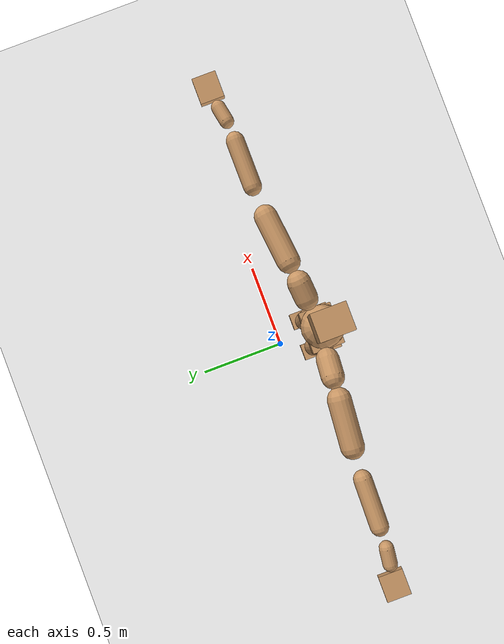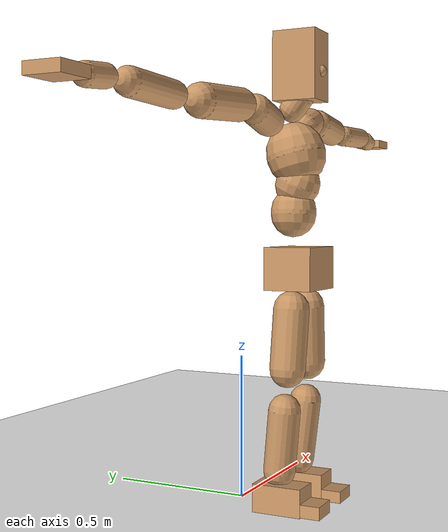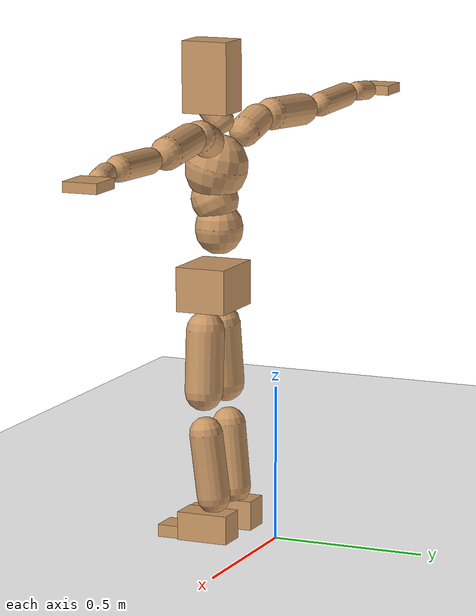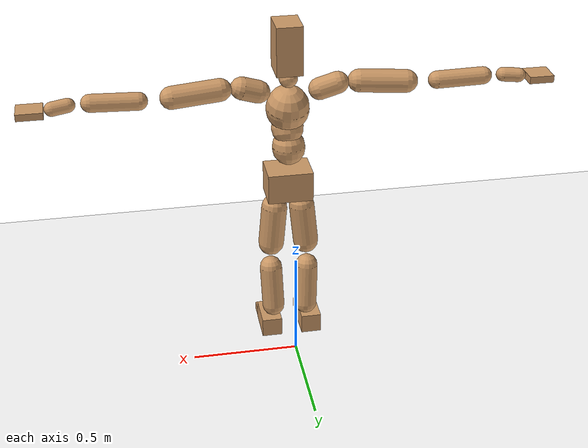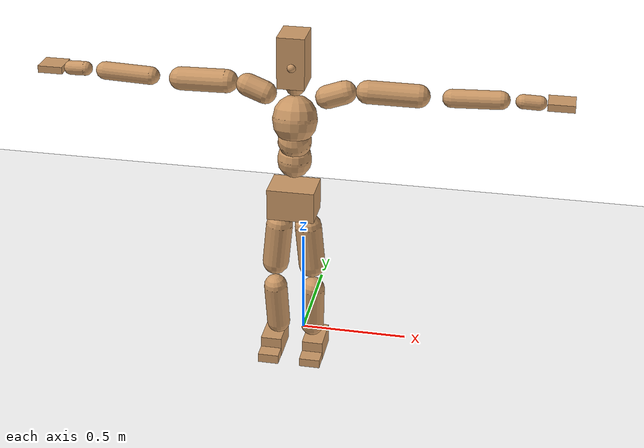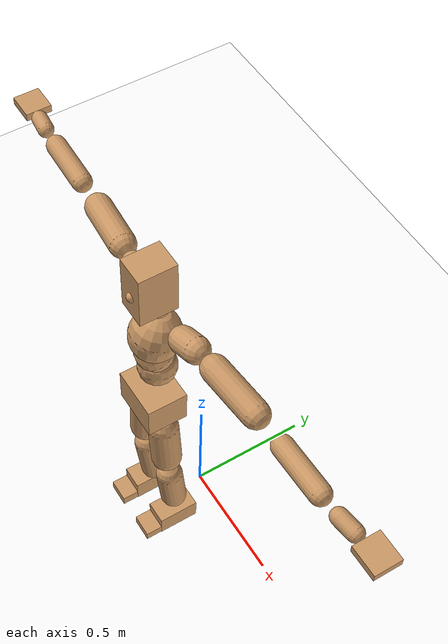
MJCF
<mujoco model="humanoid">
  <option integrator="implicitfast" />

  <visual>
    <global offwidth="1280" offheight="960" />
    <headlight active="1" ambient="0.34 0.34 0.34" diffuse="0.5 0.5 0.5" />
  </visual>

  <default>
    <joint damping="2" stiffness="2" armature="0.01" limited="true" solimplimit="0 .99 .01" />
    <geom condim="1" friction="0.7 0.005 0.0001" solimp=".99 .99 .003" solref="0.015 1" margin="0.001" rgba="0.8 0.6 .4 1" />
    <default class="smplcontact">
      <geom condim="3" friction="1. 0.005 0.0001" solref="0.015 1" solimp="0.98 0.98 0.001" priority="1" />
    </default>
    <default class="stiff_medium">
      <joint stiffness="10" />
    </default>
    <default class="stiff_medium_higher">
      <joint stiffness="50" />
    </default>
    <default class="stiff_high">
      <joint stiffness="100" />
    </default>
  </default>

  <asset>
    <texture type="skybox" builtin="gradient" rgb1="0.99 0.99 0.99" rgb2="0.608 0.828 0.892" width="100" />
    <texture builtin="flat" height="1278" mark="cross" markrgb="1 1 1" name="texgeom" random="0.01" rgb1="0.8 0.6 0.4" rgb2="0.8 0.6 0.4" type="cube" width="127" />
    <texture name="texplane" type="2d" builtin="checker" markrgb="1 1 1" rgb1="0.756 0.772 0.76" rgb2="0.6 0.6 0.6" width="100" height="100" />
    <material name="MatPlane" reflectance="0.5" texture="texplane" texrepeat="1 1" texuniform="true" />
    <material name="geom" texture="texgeom" texuniform="true" />
  </asset>

  <worldbody>
    <light name="tracking_light" pos="0 0 7" dir="0 0 -1" directional="true" cutoff="100" exponent="1" diffuse="1 1 1" specular="0.1 0.1 0.1" mode="trackcom" />
    <camera name="back" pos="0 3 2.4" xyaxes="-1 0 0 0 -1 2" mode="trackcom" />
    <camera name="side" pos="-3 0 2.4" xyaxes="0 -1 0 1 0 2" mode="trackcom" />
    <camera name="front_side" pos="-2.8 -2.8 0.8" xyaxes="0.5 -0.5 0 0.1 0.1 1" mode="trackcom" />
    <geom condim="3" name="floor" pos="0 0 0" rgba="1 1 1 1" size="100 100 .2" type="plane" material="MatPlane" />
    <body name="Pelvis" pos="-0.0018 -0.2233 0.825587" euler="90 0 0">
      <site name="Pelvis" size="0.01" />
      <freejoint name="Pelvis" />
      <geom type="box" pos="-0.0000 -0.0121 -0.0055" size="0.1069 0.0722 0.083" quat="1.0000 0.0000 0.0000 0.0000" density="3165.830099" name="Pelvis" />
      <body name="L_Hip" pos="0.0608125 -0.079975 -0.00595">
        <joint name="L_Hip_x" type="hinge" pos="0 0 0" axis="1 0 0" stiffness="8.018564387755102" range="-160.0 22.92" class="stiff_medium" damping="11.360360262787495" armature="0.007153277434128081"/>
        <joint name="L_Hip_y" type="hinge" pos="0 0 0" axis="0 1 0" stiffness="8.040343265306122" range="-70.0 70.0" class="stiff_medium" damping="8.207855033549663" armature="0.00837885672648599"/>
        <joint name="L_Hip_z" type="hinge" pos="0 0 0" axis="0 0 1" stiffness="8.038478673469386" range="-28.65 90.0" class="stiff_medium" damping="7.5819916374645935" armature="0.007151427468522716"/>
        <geom type="capsule" density="2040.816327" fromto="0.0060375 -0.065625 -0.0007875 0.023975 -0.262675 -0.00315" size="0.0615" name="L_Hip" />
        <body name="L_Knee" pos="0.0300125 -0.3283 -0.0039375">
          <joint name="L_Knee_x" type="hinge" pos="0 0 0" axis="1 0 0" range="-5.16 171.89" damping="6.187481263356621" armature="0.007345812746914751" stiffness="1.6286882448979592"/>
          <joint name="L_Knee_y" type="hinge" pos="0 0 0" axis="0 1 0" range="-4.58 6.88" damping="6.664577128501179" armature="0.008600571968275744" stiffness="1.6138675306122447"/>
          <joint name="L_Knee_z" type="hinge" pos="0 0 0" axis="0 0 1" range="-6.88 4.58" damping="6.195974658750658" armature="0.007336542514311976" stiffness="1.635226244897959"/>
          <geom type="capsule" density="1234.567901" fromto="-0.0023625 -0.06965 -0.0076125 -0.0095375 -0.2786 -0.030625" size="0.0541" name="L_Knee" />
          <body name="L_Ankle" pos="-0.0119 -0.34825 -0.0382375">
            <joint name="L_Ankle_x" type="hinge" pos="0 0 0" axis="1 0 0" range="-45.84 45.84" class="stiff_medium" damping="5.16180813989315" armature="0.008458478225834561" stiffness="8.750018673469388"/>
            <joint name="L_Ankle_y" type="hinge" pos="0 0 0" axis="0 1 0" range="-74.48 22.92" class="stiff_medium" damping="2.5896377165389355" armature="0.008515827848834853" stiffness="8.750011836734695"/>
            <joint name="L_Ankle_z" type="hinge" pos="0 0 0" axis="0 0 1" range="-4.58 4.58" class="stiff_medium" damping="5.292201995620763" armature="0.008891238718238853" stiffness="8.75"/>
            <geom type="box" pos="0.0203875 -0.0209125 0.021175" size="0.0483 0.0464 0.085" quat="1.0000 0.0000 0.0000 0.0000" density="449.071558" name="L_Ankle" class="smplcontact" />
            <body name="L_Toe" pos="0.0231 -0.048825 0.104388">
              <joint name="L_Toe_x" type="hinge" pos="0 0 0" axis="1 0 0" range="-91.67 22.92" armature="0.00910893458259064" damping="1.7855327227207918" stiffness="1.75"/>
              <joint name="L_Toe_y" type="hinge" pos="0 0 0" axis="0 1 0" range="-4.58 4.58" armature="0.009372172477213312" damping="1.8111489080207235" stiffness="1.75"/>
              <joint name="L_Toe_z" type="hinge" pos="0 0 0" axis="0 0 1" range="-4.58 4.58" armature="0.009904425331425198" damping="1.8618670376798712" stiffness="1.75"/>
              <geom type="box" pos="-0.002625 0.0048125 0.0217" size="0.0478 0.02 0.0496" quat="1.0000 0.0000 0.0000 0.0000" density="423.206892" name="L_Toe" class="smplcontact" />
            </body>
          </body>
        </body>
      </body>
      <body name="R_Hip" pos="-0.0592375 -0.0791875 -0.0037625">
        <joint name="R_Hip_x" type="hinge" pos="0 0 0" axis="1 0 0" stiffness="8.018564387755102" range="-160.0 22.92" class="stiff_medium" damping="11.360360262787495" armature="0.007153277434128081"/>
        <joint name="R_Hip_y" type="hinge" pos="0 0 0" axis="0 1 0" stiffness="8.040343265306122" range="-70.0 70.0" class="stiff_medium" damping="8.207855033549663" armature="0.00837885672648599"/>
        <joint name="R_Hip_z" type="hinge" pos="0 0 0" axis="0 0 1" stiffness="8.038478673469386" range="-90.0 28.65" class="stiff_medium" damping="7.5819916374645935" armature="0.007151427468522716"/>
        <geom type="capsule" density="2040.816327" fromto="-0.0067375 -0.0669375 -0.001575 -0.026775 -0.267838 -0.0062125" size="0.0606" name="R_Hip" />
        <body name="R_Knee" pos="-0.0335125 -0.334775 -0.0077875">
          <joint name="R_Knee_x" type="hinge" pos="0 0 0" axis="1 0 0" range="-5.16 171.89" damping="6.187481263356621" armature="0.007345812746914751" stiffness="1.6286882448979592"/>
          <joint name="R_Knee_y" type="hinge" pos="0 0 0" axis="0 1 0" range="-6.88 4.58" damping="6.664577128501179" armature="0.008600571968275744" stiffness="1.6138675306122447"/>
          <joint name="R_Knee_z" type="hinge" pos="0 0 0" axis="0 0 1" range="-4.58 6.88" damping="6.195974658750658" armature="0.007336542514311976" stiffness="1.635226244897959"/>
          <geom type="capsule" density="1234.567901" fromto="0.0028 -0.0697375 -0.0074375 0.011025 -0.278863 -0.029575" size="0.0541" name="R_Knee" />
          <body name="R_Ankle" pos="0.013825 -0.3486 -0.0370125">
            <joint name="R_Ankle_x" type="hinge" pos="0 0 0" axis="1 0 0" range="-45.84 45.84" class="stiff_medium" damping="5.16180813989315" armature="0.008458478225834561" stiffness="8.750018673469388"/>
            <joint name="R_Ankle_y" type="hinge" pos="0 0 0" axis="0 1 0" range="-22.92 74.48" class="stiff_medium" damping="2.5896377165389355" armature="0.008515827848834853" stiffness="8.750011836734695"/>
            <joint name="R_Ankle_z" type="hinge" pos="0 0 0" axis="0 0 1" range="-4.58 4.58" class="stiff_medium" damping="5.292201995620763" armature="0.008891238718238853" stiffness="8.75"/>
            <geom type="box" pos="-0.01855 -0.015225 0.0224" size="0.0483 0.0478 0.0865" quat="1.0000 0.0000 0.0000 0.0000" density="434.700981" name="R_Ankle" class="smplcontact" />
            <body name="R_Toe" pos="-0.022225 -0.0420875 0.107888">
              <joint name="R_Toe_x" type="hinge" pos="0 0 0" axis="1 0 0" range="-91.67 22.92" armature="0.00910893458259064" damping="1.7855327227207918" stiffness="1.75"/>
              <joint name="R_Toe_y" type="hinge" pos="0 0 0" axis="0 1 0" range="-4.58 4.58" armature="0.009372172477213312" damping="1.8111489080207235" stiffness="1.75"/>
              <joint name="R_Toe_z" type="hinge" pos="0 0 0" axis="0 0 1" range="-4.58 4.58" armature="0.009904425331425198" damping="1.8618670376798712" stiffness="1.75"/>
              <geom type="box" pos="0.003675 0.0039375 0.0198625" size="0.0479 0.0216 0.0493" quat="1.0000 0.0000 0.0000 0.0000" density="407.384095" name="R_Toe" class="smplcontact" />
            </body>
          </body>
        </body>
      </body>
      <body name="Torso" pos="-0.0025 0.109 -0.0267">
        <joint name="Torso_x" type="hinge" pos="0 0 0" axis="1 0 0" range="-25.78 57.3" class="stiff_medium" damping="17.816617842535408" armature="0.01220444282408802" stiffness="11.55979291666667"/>
        <joint name="Torso_y" type="hinge" pos="0 0 0" axis="0 1 0" range="-57.3 57.3" class="stiff_high" damping="32.66648617457638" armature="0.023482633249027444" stiffness="113.6051595744681"/>
        <joint name="Torso_z" type="hinge" pos="0 0 0" axis="0 0 1" range="-34.38 34.38" class="stiff_high" damping="26.532055594632826" armature="0.016035100718302126" stiffness="109.75141136363638"/>
        <geom type="capsule" density="2040.816327" fromto="0.0025 0.0608 0.0005 0.003 0.0743 0.0006" size="0.0769" name="Torso" />
        <body name="Spine" pos="0.0055 0.1352 0.0011">
          <joint name="Spine_x" type="hinge" pos="0 0 0" axis="1 0 0" stiffness="11.652306458333332" range="-25.78 57.3" class="stiff_medium" damping="18.346849955919502" armature="0.012838923235543205"/>
          <joint name="Spine_y" type="hinge" pos="0 0 0" axis="0 1 0" stiffness="12.490174523809525" range="-57.3 57.3" class="stiff_high" damping="13.727844217436889" armature="0.02357524439747789"/>
          <joint name="Spine_z" type="hinge" pos="0 0 0" axis="0 0 1" stiffness="24.140002666666668" range="-34.38 34.38" class="stiff_high" damping="18.060617405335822" armature="0.018767022520783626"/>
          <geom type="capsule" density="2040.816327" fromto="0.0007 0.0238 0.0114 0.0008 0.0291 0.014" size="0.0755" name="Spine" />
          <body name="Chest" pos="0.0015 0.0529 0.0254">
            <joint name="Chest_x" type="hinge" pos="0 0 0" axis="1 0 0" stiffness="12.52777088888889" range="-25.78 57.3" class="stiff_medium" damping="19.323420684641807" armature="0.013246821899117774"/>
            <joint name="Chest_y" type="hinge" pos="0 0 0" axis="0 1 0" stiffness="14.856075609756099" range="-57.3 57.3" class="stiff_high" damping="14.973397185345428" armature="0.023580695741040242"/>
            <joint name="Chest_z" type="hinge" pos="0 0 0" axis="0 0 1" stiffness="24.504841860465113" range="-34.38 34.38" class="stiff_high" damping="18.776413152497923" armature="0.019982087898338156"/>
            <geom type="capsule" density="2040.816327" fromto="-0.0009 0.0682 -0.0173 -0.001 0.0833 -0.0212" size="0.1002" name="Chest" />
            <body name="Neck" pos="-0.0028 0.2139 -0.0429">
              <joint name="Neck_x" type="hinge" pos="0 0 0" axis="1 0 0" range="-28.65 57.3" class="stiff_medium_higher" damping="9.999999999999991" armature="0.009999999999999983" stiffness="50.0"/>
              <joint name="Neck_y" type="hinge" pos="0 0 0" axis="0 1 0" range="-40.11 40.11" class="stiff_medium_higher" damping="10.0" armature="0.01" stiffness="50.0"/>
              <joint name="Neck_z" type="hinge" pos="0 0 0" axis="0 0 1" range="-40.11 40.11" class="stiff_medium_higher" damping="9.99999999999999" armature="0.009999999999999978" stiffness="50.0"/>
              <geom type="capsule" density="1000" fromto="0.001 0.013 0.0103 0.0041 0.052 0.0411" size="0.0436" name="Neck" />
              <body name="Head" pos="0.0052 0.065 0.0513">
                <joint name="Head_x" type="hinge" pos="0 0 0" axis="1 0 0" range="-28.65 57.3" class="stiff_medium_higher" damping="1.9999999999999982" armature="0.009999999999999983" stiffness="50.0"/>
                <joint name="Head_y" type="hinge" pos="0 0 0" axis="0 1 0" range="-40.11 40.11" class="stiff_medium_higher" damping="2.0" armature="0.010000000000000002" stiffness="50.0"/>
                <joint name="Head_z" type="hinge" pos="0 0 0" axis="0 0 1" range="-40.11 40.11" class="stiff_medium_higher" damping="1.999999999999998" armature="0.009999999999999981" stiffness="50.0"/>
                <geom type="box" pos="-0.0042 0.0876 -0.0116" size="0.0606 0.1154 0.076" quat="1.0000 0.0000 0.0000 0.0000" density="1018.069894" name="Head" />
                <geom type="capsule" name="nose" size="0.02 0.01" pos="0 0.07 0.05" quat="1 0 0 0" mass="0" contype="0" conaffinity="0" />
              </body>
            </body>
            <body name="L_Thorax" pos="0.11032 0.17038 -0.04774">
              <joint name="L_Thorax_x" type="hinge" pos="0 0 0" axis="1 0 0" range="-10.89 4.58" class="stiff_medium_higher" damping="36.240858058789804" armature="0.018856138634744203" stiffness="87.06712295918368"/>
              <joint name="L_Thorax_y" type="hinge" pos="0 0 0" axis="0 1 0" range="-28.65 17.19" class="stiff_medium_higher" damping="40.96620891880995" armature="0.023898132129905863" stiffness="87.78041020408163"/>
              <joint name="L_Thorax_z" type="hinge" pos="0 0 0" axis="0 0 1" range="-31.51 40.11" class="stiff_medium_higher" damping="40.96835729355361" armature="0.023902786052476355" stiffness="87.77252448979593"/>
              <geom type="capsule" density="1000" fromto="0.02548 0.00854 -0.00252 0.10192 0.03416 -0.00994" size="0.0521" name="L_Thorax" />
              <body name="L_Shoulder" pos="0.1274 0.0427 -0.01246">
                <joint name="L_Shoulder_x" type="hinge" pos="0 0 0" axis="1 0 0" range="-97.4 97.4" class="stiff_medium" damping="10.216467793124671" armature="0.016750975720821" stiffness="17.30848"/>
                <joint name="L_Shoulder_y" type="hinge" pos="0 0 0" axis="0 1 0" range="-108.86 80.21" class="stiff_medium" damping="12.210584630805666" armature="0.023662310849895674" stiffness="17.503030918367347"/>
                <joint name="L_Shoulder_z" type="hinge" pos="0 0 0" axis="0 0 1" range="-97.4 85.94" class="stiff_medium" damping="12.207996623471661" armature="0.023667800947755637" stiffness="17.491553877551024"/>
                <geom type="capsule" density="1000" fromto="0.07266 -0.00364 -0.0077 0.29078 -0.01428 -0.0308" size="0.0517" name="L_Shoulder" />
                <body name="L_Elbow" pos="0.36344 -0.01792 -0.0385">
                  <joint name="L_Elbow_x" type="hinge" pos="0 0 0" axis="1 0 0" range="-17.19 4.58" damping="7.586581525572694" armature="0.013620348817446727" stiffness="3.380601775510204"/>
                  <joint name="L_Elbow_y" type="hinge" pos="0 0 0" axis="0 1 0" range="-180.0 17.19" damping="9.758671052618123" armature="0.02252367498721923" stiffness="3.382455510204082"/>
                  <joint name="L_Elbow_z" type="hinge" pos="0 0 0" axis="0 0 1" range="-100.84 4.58" damping="9.760335979040743" armature="0.022552387617329566" stiffness="3.3793019183673465"/>
                  <geom type="capsule" density="1000" fromto="0.06972 0.00252 -0.00028 0.27916 0.01008 -0.00126" size="0.0405" name="L_Elbow" />
                  <body name="L_Wrist" pos="0.34888 0.0126 -0.00168">
                    <joint name="L_Wrist_x" type="hinge" pos="0 0 0" axis="1 0 0" range="-180.0 22.92" armature="0.013168550139584014" damping="2.812193940526971" stiffness="3.002773530612245"/>
                    <joint name="L_Wrist_y" type="hinge" pos="0 0 0" axis="0 1 0" range="-17.19 17.19" armature="0.019145926143816126" damping="3.4076565933193783" stiffness="3.0325311428571426"/>
                    <joint name="L_Wrist_z" type="hinge" pos="0 0 0" axis="0 0 1" range="-22.92 22.92" armature="0.019468640829170596" damping="3.4294485001746917" stiffness="3.0205285306122445"/>
                    <geom type="capsule" density="1000" fromto="0.02352 -0.00224 -0.0042 0.09408 -0.0091 -0.0168" size="0.0318" name="L_Wrist" class="smplcontact" />
                    <body name="L_Hand" pos="0.1176 -0.01148 -0.02086">
                      <joint name="L_Hand_x" type="hinge" pos="0 0 0" axis="1 0 0" range="-17.19 17.19" armature="0.010418235140997384" damping="2.4154112856734224" stiffness="2.8000000000000003"/>
                      <joint name="L_Hand_y" type="hinge" pos="0 0 0" axis="0 1 0" range="-51.57 51.57" armature="0.015057977012994645" damping="2.903871058996422" stiffness="2.8000000000000003"/>
                      <joint name="L_Hand_z" type="hinge" pos="0 0 0" axis="0 0 1" range="-91.67 91.67" armature="0.016294763602145858" damping="3.0207726854567656" stiffness="2.8000000000000003"/>
                      <geom type="box" pos="0.06902 0.0014 -0.00812" size="0.0585 0.0158 0.0538" quat="1.0000 0.0000 0.0000 0.0000" density="400.552564" name="L_Hand" class="smplcontact" />
                    </body>
                  </body>
                </body>
              </body>
            </body>
            <body name="R_Thorax" pos="-0.11452 0.16632 -0.05404">
              <joint name="R_Thorax_x" type="hinge" pos="0 0 0" axis="1 0 0" range="-10.89 4.58" class="stiff_medium_higher" damping="36.240858058789804" armature="0.018856138634744203" stiffness="87.06712295918368"/>
              <joint name="R_Thorax_y" type="hinge" pos="0 0 0" axis="0 1 0" range="-17.19 28.65" class="stiff_medium_higher" damping="40.96620891880995" armature="0.023898132129905863" stiffness="87.78041020408163"/>
              <joint name="R_Thorax_z" type="hinge" pos="0 0 0" axis="0 0 1" range="-40.11 31.51" class="stiff_medium_higher" damping="40.96835729355361" armature="0.023902786052476355" stiffness="87.77252448979593"/>
              <geom type="capsule" density="1000" fromto="-0.02688 0.0091 -0.00252 -0.10752 0.0364 -0.01022" size="0.0511" name="R_Thorax" />
              <body name="R_Shoulder" pos="-0.1344 0.04564 -0.01274">
                <joint name="R_Shoulder_x" type="hinge" pos="0 0 0" axis="1 0 0" range="-97.4 97.4" class="stiff_medium" damping="10.216467793124671" armature="0.016750975720821" stiffness="17.30848"/>
                <joint name="R_Shoulder_y" type="hinge" pos="0 0 0" axis="0 1 0" range="-80.21 108.86" class="stiff_medium" damping="12.210584630805666" armature="0.023662310849895674" stiffness="17.503030918367347"/>
                <joint name="R_Shoulder_z" type="hinge" pos="0 0 0" axis="0 0 1" range="-85.94 97.4" class="stiff_medium" damping="12.207996623471661" armature="0.023667800947755637" stiffness="17.491553877551024"/>
                <geom type="capsule" density="1000" fromto="-0.07098 -0.00378 -0.00602 -0.2842 -0.01498 -0.02394" size="0.0531" name="R_Shoulder" />
                <body name="R_Elbow" pos="-0.35518 -0.01862 -0.02996">
                  <joint name="R_Elbow_x" type="hinge" pos="0 0 0" axis="1 0 0" range="-17.19 4.58" damping="7.586581525572694" armature="0.013620348817446727" stiffness="3.380601775510204"/>
                  <joint name="R_Elbow_y" type="hinge" pos="0 0 0" axis="0 1 0" range="-17.19 180.0" damping="9.758671052618123" armature="0.02252367498721923" stiffness="3.382455510204082"/>
                  <joint name="R_Elbow_z" type="hinge" pos="0 0 0" axis="0 0 1" range="-4.58 100.84" damping="9.760335979040743" armature="0.022552387617329566" stiffness="3.3793019183673465"/>
                  <geom type="capsule" density="1000" fromto="-0.07154 0.00224 -0.00154 -0.28588 0.00868 -0.00616" size="0.0408" name="R_Elbow" />
                  <body name="R_Wrist" pos="-0.35742 0.01092 -0.00784">
                    <joint name="R_Wrist_x" type="hinge" pos="0 0 0" axis="1 0 0" range="-180.0 22.92" armature="0.013168550139584014" damping="2.812193940526971" stiffness="3.002773530612245"/>
                    <joint name="R_Wrist_y" type="hinge" pos="0 0 0" axis="0 1 0" range="-17.19 17.19" armature="0.019145926143816126" damping="3.4076565933193783" stiffness="3.0325311428571426"/>
                    <joint name="R_Wrist_z" type="hinge" pos="0 0 0" axis="0 0 1" range="-22.92 22.92" armature="0.019468640829170596" damping="3.4294485001746917" stiffness="3.0205285306122445"/>
                    <geom type="capsule" density="1000" fromto="-0.02366 -0.00168 -0.00294 -0.09478 -0.00686 -0.01162" size="0.0326" name="R_Wrist" class="smplcontact" />
                    <body name="R_Hand" pos="-0.11844 -0.00854 -0.01442">
                      <joint name="R_Hand_x" type="hinge" pos="0 0 0" axis="1 0 0" range="-17.19 17.19" armature="0.010418235140997384" damping="2.4154112856734224" stiffness="2.8000000000000003"/>
                      <joint name="R_Hand_y" type="hinge" pos="0 0 0" axis="0 1 0" range="-51.57 51.57" armature="0.015057977012994645" damping="2.903871058996422" stiffness="2.8000000000000003"/>
                      <joint name="R_Hand_z" type="hinge" pos="0 0 0" axis="0 0 1" range="-91.67 91.67" armature="0.016294763602145858" damping="3.0207726854567656" stiffness="2.8000000000000003"/>
                      <geom type="box" pos="-0.06468 -0.00126 -0.01106" size="0.0569 0.0164 0.0546" quat="1.0000 0.0000 0.0000 0.0000" density="403.679611" name="R_Hand" class="smplcontact" />
                    </body>
                  </body>
                </body>
              </body>
            </body>
          </body>
        </body>
      </body>
    </body>
  </worldbody>
  <actuator>
    <general name="L_Hip_x" joint="L_Hip_x" biastype="affine" gainprm="230.3974619502181" biasprm="-172.65954561631258 -144.33415897959185 -1.5147147017049993" ctrllimited="true" ctrlrange="-1 1" forcerange="-288.6683179591837 288.6683179591837" />
    <general name="L_Hip_y" joint="L_Hip_y" biastype="affine" gainprm="176.8163833423812" biasprm="0.0 -144.7261787755102 -1.6415710067099325" ctrllimited="true" ctrlrange="-1 1" forcerange="-289.4523575510204 289.4523575510204" />
    <general name="L_Hip_z" joint="L_Hip_z" biastype="affine" gainprm="149.81713355526176" biasprm="77.4654963642251 -144.69261612244895 -1.5163983274929187" ctrllimited="true" ctrlrange="-1 1" forcerange="-289.3852322448979 289.3852322448979" />
    <general name="L_Knee_x" joint="L_Knee_x" biastype="affine" gainprm="226.4768283011216" biasprm="213.27580673621011 -146.58194204081633 -1.5468703158391552" ctrllimited="true" ctrlrange="-1 1" forcerange="-293.16388408163266 293.16388408163266" />
    <general name="L_Knee_y" joint="L_Knee_y" biastype="affine" gainprm="14.525877693080384" biasprm="2.915315767372154 -145.24807775510203 -1.6661442821252948" ctrllimited="true" ctrlrange="-1 1" forcerange="-290.49615551020406 290.49615551020406" />
    <general name="L_Knee_z" joint="L_Knee_z" biastype="affine" gainprm="14.718120281465588" biasprm="-2.953898485808975 -147.17036204081631 -1.5489936646876645" ctrllimited="true" ctrlrange="-1 1" forcerange="-294.34072408163263 294.34072408163263" />
    <general name="L_Ankle_x" joint="L_Ankle_x" biastype="affine" gainprm="63.0047751266266" biasprm="0.0 -78.75016806122449 -1.7206027132977169" ctrllimited="true" ctrlrange="-1 1" forcerange="-157.50033612244897 157.50033612244897" />
    <general name="L_Ankle_y" joint="L_Ankle_y" biastype="affine" gainprm="66.93564902394152" biasprm="-35.43328607468609 -78.75010653061226 -1.7264251443592904" ctrllimited="true" ctrlrange="-1 1" forcerange="-157.5002130612245 157.5002130612245" />
    <general name="L_Ankle_z" joint="L_Ankle_z" biastype="affine" gainprm="6.294966279630548" biasprm="0.0 -78.75 -1.7640673318735876" ctrllimited="true" ctrlrange="-1 1" forcerange="-157.5 157.5" />
    <general name="L_Toe_x" joint="L_Toe_x" biastype="affine" gainprm="62.999142880599514" biasprm="-37.797286613502195 -63.0 -0.7142130890883167" ctrllimited="true" ctrlrange="-1 1" forcerange="-126.0 126.0" />
    <general name="L_Toe_y" joint="L_Toe_y" biastype="affine" gainprm="5.035973023704439" biasprm="0.0 -63.0 -0.7244595632082894" ctrllimited="true" ctrlrange="-1 1" forcerange="-126.0 126.0" />
    <general name="L_Toe_z" joint="L_Toe_z" biastype="affine" gainprm="5.035973023704439" biasprm="0.0 -63.0 -0.7447468150719485" ctrllimited="true" ctrlrange="-1 1" forcerange="-126.0 126.0" />
    <general name="R_Hip_x" joint="R_Hip_x" biastype="affine" gainprm="230.3974619502181" biasprm="-172.65954561631258 -144.33415897959185 -1.5147147017049993" ctrllimited="true" ctrlrange="-1 1" forcerange="-288.6683179591837 288.6683179591837" />
    <general name="R_Hip_y" joint="R_Hip_y" biastype="affine" gainprm="176.8163833423812" biasprm="0.0 -144.7261787755102 -1.6415710067099325" ctrllimited="true" ctrlrange="-1 1" forcerange="-289.4523575510204 289.4523575510204" />
    <general name="R_Hip_z" joint="R_Hip_z" biastype="affine" gainprm="149.81713355526176" biasprm="-77.4654963642251 -144.69261612244895 -1.5163983274929187" ctrllimited="true" ctrlrange="-1 1" forcerange="-289.3852322448979 289.3852322448979" />
    <general name="R_Knee_x" joint="R_Knee_x" biastype="affine" gainprm="226.4768283011216" biasprm="213.27580673621011 -146.58194204081633 -1.5468703158391552" ctrllimited="true" ctrlrange="-1 1" forcerange="-293.16388408163266 293.16388408163266" />
    <general name="R_Knee_y" joint="R_Knee_y" biastype="affine" gainprm="14.525877693080384" biasprm="-2.915315767372154 -145.24807775510203 -1.6661442821252948" ctrllimited="true" ctrlrange="-1 1" forcerange="-290.49615551020406 290.49615551020406" />
    <general name="R_Knee_z" joint="R_Knee_z" biastype="affine" gainprm="14.718120281465588" biasprm="2.953898485808975 -147.17036204081631 -1.5489936646876645" ctrllimited="true" ctrlrange="-1 1" forcerange="-294.34072408163263 294.34072408163263" />
    <general name="R_Ankle_x" joint="R_Ankle_x" biastype="affine" gainprm="63.0047751266266" biasprm="0.0 -78.75016806122449 -1.7206027132977169" ctrllimited="true" ctrlrange="-1 1" forcerange="-157.50033612244897 157.50033612244897" />
    <general name="R_Ankle_y" joint="R_Ankle_y" biastype="affine" gainprm="66.93564902394152" biasprm="35.43328607468609 -78.75010653061226 -1.7264251443592904" ctrllimited="true" ctrlrange="-1 1" forcerange="-157.5002130612245 157.5002130612245" />
    <general name="R_Ankle_z" joint="R_Ankle_z" biastype="affine" gainprm="6.294966279630548" biasprm="0.0 -78.75 -1.7640673318735876" ctrllimited="true" ctrlrange="-1 1" forcerange="-157.5 157.5" />
    <general name="R_Toe_x" joint="R_Toe_x" biastype="affine" gainprm="62.999142880599514" biasprm="-37.797286613502195 -63.0 -0.7142130890883167" ctrllimited="true" ctrlrange="-1 1" forcerange="-126.0 126.0" />
    <general name="R_Toe_y" joint="R_Toe_y" biastype="affine" gainprm="5.035973023704439" biasprm="0.0 -63.0 -0.7244595632082894" ctrllimited="true" ctrlrange="-1 1" forcerange="-126.0 126.0" />
    <general name="R_Toe_z" joint="R_Toe_z" biastype="affine" gainprm="5.035973023704439" biasprm="0.0 -63.0 -0.7447468150719485" ctrllimited="true" ctrlrange="-1 1" forcerange="-126.0 126.0" />
    <general name="Torso_x" joint="Torso_x" biastype="affine" gainprm="201.14310764492842" biasprm="76.31235860577928 -277.43503000000004 -4.751098091342776" ctrllimited="true" ctrlrange="-1 1" forcerange="-416.1525450000001 416.1525450000001" />
    <general name="Torso_y" joint="Torso_y" biastype="affine" gainprm="272.67246693299046" biasprm="0.0 -272.65238297872344 -6.533297234915275" ctrllimited="true" ctrlrange="-1 1" forcerange="-408.9785744680852 408.9785744680852" />
    <general name="Torso_z" joint="Torso_z" biastype="affine" gainprm="158.05367395985348" biasprm="0.0 -263.4033872727273 -5.306411118926565" ctrllimited="true" ctrlrange="-1 1" forcerange="-395.10508090909093 395.10508090909093" />
    <general name="Spine_x" joint="Spine_x" biastype="affine" gainprm="202.75286496534218" biasprm="76.9230898375973 -279.655355 -4.892493321578534" ctrllimited="true" ctrlrange="-1 1" forcerange="-419.4830325 419.4830325" />
    <general name="Spine_y" joint="Spine_y" biastype="affine" gainprm="299.7862696190556" biasprm="0.0 -299.7641885714286 -6.8639221087184445" ctrllimited="true" ctrlrange="-1 1" forcerange="-449.6462828571429 449.6462828571429" />
    <general name="Spine_z" joint="Spine_z" biastype="affine" gainprm="173.82082214076556" biasprm="0.0 -289.680032 -6.020205801778608" ctrllimited="true" ctrlrange="-1 1" forcerange="-434.520048 434.520048" />
    <general name="Chest_x" joint="Chest_x" biastype="affine" gainprm="217.98615136277013" biasprm="82.70249748380492 -300.6665013333334 -5.152912182571148" ctrllimited="true" ctrlrange="-1 1" forcerange="-450.999752 450.999752" />
    <general name="Chest_y" joint="Chest_y" biastype="affine" gainprm="356.57207829543177" biasprm="0.0 -356.5458146341464 -7.486698592672714" ctrllimited="true" ctrlrange="-1 1" forcerange="-534.8187219512196 534.8187219512196" />
    <general name="Chest_z" joint="Chest_z" biastype="affine" gainprm="176.44785783296902" biasprm="0.0 -294.0581023255814 -6.258804384165974" ctrllimited="true" ctrlrange="-1 1" forcerange="-441.08715348837205 441.08715348837205" />
    <general name="Neck_x" joint="Neck_x" biastype="affine" gainprm="27.00198885760427" biasprm="9.000662952534757 -36.0 -0.7999999999999994" ctrllimited="true" ctrlrange="-1 1" forcerange="-72.0 72.0" />
    <general name="Neck_y" joint="Neck_y" biastype="affine" gainprm="25.20185626709732" biasprm="0.0 -36.0 -0.8" ctrllimited="true" ctrlrange="-1 1" forcerange="-72.0 72.0" />
    <general name="Neck_z" joint="Neck_z" biastype="affine" gainprm="25.20185626709732" biasprm="0.0 -36.0 -0.7999999999999992" ctrllimited="true" ctrlrange="-1 1" forcerange="-72.0 72.0" />
    <general name="Head_x" joint="Head_x" biastype="affine" gainprm="18.001325905069514" biasprm="6.000441968356505 -24.0 -0.7999999999999994" ctrllimited="true" ctrlrange="-1 1" forcerange="-48.0 48.0" />
    <general name="Head_y" joint="Head_y" biastype="affine" gainprm="16.801237511398213" biasprm="0.0 -24.0 -0.8" ctrllimited="true" ctrlrange="-1 1" forcerange="-48.0 48.0" />
    <general name="Head_z" joint="Head_z" biastype="affine" gainprm="16.801237511398213" biasprm="0.0 -24.0 -0.7999999999999993" ctrllimited="true" ctrlrange="-1 1" forcerange="-48.0 48.0" />
    <general name="L_Thorax_x" joint="L_Thorax_x" biastype="affine" gainprm="28.21000227853141" biasprm="-11.506471517616887 -208.96109510204082 -2.8992686447031843" ctrllimited="true" ctrlrange="-1 1" forcerange="-417.92219020408163 417.92219020408163" />
    <general name="L_Thorax_y" joint="L_Thorax_y" biastype="affine" gainprm="84.27540118209936" biasprm="-21.06885029552484 -210.6729844897959 -3.277296713504796" ctrllimited="true" ctrlrange="-1 1" forcerange="-421.3459689795918 421.3459689795918" />
    <general name="L_Thorax_z" joint="L_Thorax_z" biastype="affine" gainprm="131.65929338702185" biasprm="15.809409705785923 -210.6540587755102 -3.2774685834842887" ctrllimited="true" ctrlrange="-1 1" forcerange="-421.3081175510204 421.3081175510204" />
    <general name="L_Shoulder_x" joint="L_Shoulder_x" biastype="affine" gainprm="141.23310021032776" biasprm="0.0 -83.080704 -2.7243914114999126" ctrllimited="true" ctrlrange="-1 1" forcerange="-166.161408 166.161408" />
    <general name="L_Shoulder_y" joint="L_Shoulder_y" biastype="affine" gainprm="138.61955280584408" biasprm="-21.005184259202586 -84.01454840816328 -3.256155901548178" ctrllimited="true" ctrlrange="-1 1" forcerange="-168.02909681632656 168.02909681632656" />
    <general name="L_Shoulder_z" joint="L_Shoulder_z" biastype="affine" gainprm="134.33037540273168" biasprm="-8.396564318290107 -83.9594586122449 -3.25546576625911" ctrllimited="true" ctrlrange="-1 1" forcerange="-167.9189172244898 167.9189172244898" />
    <general name="L_Elbow_x" joint="L_Elbow_x" biastype="affine" gainprm="23.120771250680953" biasprm="-13.39241733904855 -121.70166391836734 -1.213853044091631" ctrllimited="true" ctrlrange="-1 1" forcerange="-243.4033278367347 243.4033278367347" />
    <general name="L_Elbow_y" joint="L_Elbow_y" biastype="affine" gainprm="209.53995807470082" biasprm="-173.0067476755517 -121.76839836734695 -1.5613873684188997" ctrllimited="true" ctrlrange="-1 1" forcerange="-243.5367967346939 243.5367967346939" />
    <general name="L_Elbow_z" joint="L_Elbow_z" biastype="affine" gainprm="111.91798423395207" biasprm="-102.19337091975173 -121.65486906122447 -1.5616537566465192" ctrllimited="true" ctrlrange="-1 1" forcerange="-243.30973812244895 243.30973812244895" />
    <general name="L_Wrist_x" joint="L_Wrist_x" biastype="affine" gainprm="31.904067455407095" biasprm="-24.696880129584795 -18.01664118367347 -1.1248775762107885" ctrllimited="true" ctrlrange="-1 1" forcerange="-36.03328236734694 36.03328236734694" />
    <general name="L_Wrist_y" joint="L_Wrist_y" biastype="affine" gainprm="5.458958141984436" biasprm="0.0 -18.195186857142858 -1.3630626373277515" ctrllimited="true" ctrlrange="-1 1" forcerange="-36.390373714285715 36.390373714285715" />
    <general name="L_Wrist_z" joint="L_Wrist_z" biastype="affine" gainprm="7.249802464681568" biasprm="0.0 -18.123171183673467 -1.3717794000698769" ctrllimited="true" ctrlrange="-1 1" forcerange="-36.246342367346934 36.246342367346934" />
    <general name="L_Hand_x" joint="L_Hand_x" biastype="affine" gainprm="5.040371253419465" biasprm="0.0 -16.8 -0.966164514269369" ctrllimited="true" ctrlrange="-1 1" forcerange="-33.6 33.6" />
    <general name="L_Hand_y" joint="L_Hand_y" biastype="affine" gainprm="15.121113760258392" biasprm="0.0 -16.8 -1.161548423598569" ctrllimited="true" ctrlrange="-1 1" forcerange="-33.6 33.6" />
    <general name="L_Hand_z" joint="L_Hand_z" biastype="affine" gainprm="26.879047865093792" biasprm="0.0 -16.8 -1.2083090741827063" ctrllimited="true" ctrlrange="-1 1" forcerange="-33.6 33.6" />
    <general name="R_Thorax_x" joint="R_Thorax_x" biastype="affine" gainprm="28.21000227853141" biasprm="-11.506471517616887 -208.96109510204082 -2.8992686447031843" ctrllimited="true" ctrlrange="-1 1" forcerange="-417.92219020408163 417.92219020408163" />
    <general name="R_Thorax_y" joint="R_Thorax_y" biastype="affine" gainprm="84.27540118209936" biasprm="21.068850295524825 -210.6729844897959 -3.277296713504796" ctrllimited="true" ctrlrange="-1 1" forcerange="-421.3459689795918 421.3459689795918" />
    <general name="R_Thorax_z" joint="R_Thorax_z" biastype="affine" gainprm="131.65929338702185" biasprm="-15.809409705785923 -210.6540587755102 -3.2774685834842887" ctrllimited="true" ctrlrange="-1 1" forcerange="-421.3081175510204 421.3081175510204" />
    <general name="R_Shoulder_x" joint="R_Shoulder_x" biastype="affine" gainprm="141.23310021032776" biasprm="0.0 -83.080704 -2.7243914114999126" ctrllimited="true" ctrlrange="-1 1" forcerange="-166.161408 166.161408" />
    <general name="R_Shoulder_y" joint="R_Shoulder_y" biastype="affine" gainprm="138.61955280584408" biasprm="21.005184259202586 -84.01454840816328 -3.256155901548178" ctrllimited="true" ctrlrange="-1 1" forcerange="-168.02909681632656 168.02909681632656" />
    <general name="R_Shoulder_z" joint="R_Shoulder_z" biastype="affine" gainprm="134.33037540273168" biasprm="8.396564318290089 -83.9594586122449 -3.25546576625911" ctrllimited="true" ctrlrange="-1 1" forcerange="-167.9189172244898 167.9189172244898" />
    <general name="R_Elbow_x" joint="R_Elbow_x" biastype="affine" gainprm="23.120771250680953" biasprm="-13.39241733904855 -121.70166391836734 -1.213853044091631" ctrllimited="true" ctrlrange="-1 1" forcerange="-243.4033278367347 243.4033278367347" />
    <general name="R_Elbow_y" joint="R_Elbow_y" biastype="affine" gainprm="209.53995807470082" biasprm="173.0067476755517 -121.76839836734695 -1.5613873684188997" ctrllimited="true" ctrlrange="-1 1" forcerange="-243.5367967346939 243.5367967346939" />
    <general name="R_Elbow_z" joint="R_Elbow_z" biastype="affine" gainprm="111.91798423395207" biasprm="102.19337091975173 -121.65486906122447 -1.5616537566465192" ctrllimited="true" ctrlrange="-1 1" forcerange="-243.30973812244895 243.30973812244895" />
    <general name="R_Wrist_x" joint="R_Wrist_x" biastype="affine" gainprm="31.904067455407095" biasprm="-24.696880129584795 -18.01664118367347 -1.1248775762107885" ctrllimited="true" ctrlrange="-1 1" forcerange="-36.03328236734694 36.03328236734694" />
    <general name="R_Wrist_y" joint="R_Wrist_y" biastype="affine" gainprm="5.458958141984436" biasprm="0.0 -18.195186857142858 -1.3630626373277515" ctrllimited="true" ctrlrange="-1 1" forcerange="-36.390373714285715 36.390373714285715" />
    <general name="R_Wrist_z" joint="R_Wrist_z" biastype="affine" gainprm="7.249802464681568" biasprm="0.0 -18.123171183673467 -1.3717794000698769" ctrllimited="true" ctrlrange="-1 1" forcerange="-36.246342367346934 36.246342367346934" />
    <general name="R_Hand_x" joint="R_Hand_x" biastype="affine" gainprm="5.040371253419465" biasprm="0.0 -16.8 -0.966164514269369" ctrllimited="true" ctrlrange="-1 1" forcerange="-33.6 33.6" />
    <general name="R_Hand_y" joint="R_Hand_y" biastype="affine" gainprm="15.121113760258392" biasprm="0.0 -16.8 -1.161548423598569" ctrllimited="true" ctrlrange="-1 1" forcerange="-33.6 33.6" />
    <general name="R_Hand_z" joint="R_Hand_z" biastype="affine" gainprm="26.879047865093792" biasprm="0.0 -16.8 -1.2083090741827063" ctrllimited="true" ctrlrange="-1 1" forcerange="-33.6 33.6" />
  </actuator>
  <contact>
    <exclude body1="Torso" body2="Chest" />
    <exclude body1="Head" body2="Chest" />
    <exclude body1="R_Knee" body2="R_Toe" />
    <exclude body1="R_Knee" body2="L_Ankle" />
    <exclude body1="R_Knee" body2="L_Toe" />
    <exclude body1="L_Knee" body2="L_Toe" />
    <exclude body1="L_Knee" body2="R_Ankle" />
    <exclude body1="L_Knee" body2="R_Toe" />
    <exclude body1="L_Shoulder" body2="Chest" />
    <exclude body1="R_Shoulder" body2="Chest" />
  </contact>
  <sensor>
    <framelinvel name="sensor_Pelvis_framelinvel" objtype="xbody" objname="Pelvis" />
    <framelinvel name="sensor_L_Hip_framelinvel" objtype="xbody" objname="L_Hip" />
    <framelinvel name="sensor_L_Knee_framelinvel" objtype="xbody" objname="L_Knee" />
    <framelinvel name="sensor_L_Ankle_framelinvel" objtype="xbody" objname="L_Ankle" />
    <framelinvel name="sensor_L_Toe_framelinvel" objtype="xbody" objname="L_Toe" />
    <framelinvel name="sensor_R_Hip_framelinvel" objtype="xbody" objname="R_Hip" />
    <framelinvel name="sensor_R_Knee_framelinvel" objtype="xbody" objname="R_Knee" />
    <framelinvel name="sensor_R_Ankle_framelinvel" objtype="xbody" objname="R_Ankle" />
    <framelinvel name="sensor_R_Toe_framelinvel" objtype="xbody" objname="R_Toe" />
    <framelinvel name="sensor_Torso_framelinvel" objtype="xbody" objname="Torso" />
    <framelinvel name="sensor_Spine_framelinvel" objtype="xbody" objname="Spine" />
    <framelinvel name="sensor_Chest_framelinvel" objtype="xbody" objname="Chest" />
    <framelinvel name="sensor_Neck_framelinvel" objtype="xbody" objname="Neck" />
    <framelinvel name="sensor_Head_framelinvel" objtype="xbody" objname="Head" />
    <framelinvel name="sensor_L_Thorax_framelinvel" objtype="xbody" objname="L_Thorax" />
    <framelinvel name="sensor_L_Shoulder_framelinvel" objtype="xbody" objname="L_Shoulder" />
    <framelinvel name="sensor_L_Elbow_framelinvel" objtype="xbody" objname="L_Elbow" />
    <framelinvel name="sensor_L_Wrist_framelinvel" objtype="xbody" objname="L_Wrist" />
    <framelinvel name="sensor_L_Hand_framelinvel" objtype="xbody" objname="L_Hand" />
    <framelinvel name="sensor_R_Thorax_framelinvel" objtype="xbody" objname="R_Thorax" />
    <framelinvel name="sensor_R_Shoulder_framelinvel" objtype="xbody" objname="R_Shoulder" />
    <framelinvel name="sensor_R_Elbow_framelinvel" objtype="xbody" objname="R_Elbow" />
    <framelinvel name="sensor_R_Wrist_framelinvel" objtype="xbody" objname="R_Wrist" />
    <framelinvel name="sensor_R_Hand_framelinvel" objtype="xbody" objname="R_Hand" />
    <frameangvel name="sensor_Pelvis_frameangvel" objtype="xbody" objname="Pelvis" />
    <frameangvel name="sensor_L_Hip_frameangvel" objtype="xbody" objname="L_Hip" />
    <frameangvel name="sensor_L_Knee_frameangvel" objtype="xbody" objname="L_Knee" />
    <frameangvel name="sensor_L_Ankle_frameangvel" objtype="xbody" objname="L_Ankle" />
    <frameangvel name="sensor_L_Toe_frameangvel" objtype="xbody" objname="L_Toe" />
    <frameangvel name="sensor_R_Hip_frameangvel" objtype="xbody" objname="R_Hip" />
    <frameangvel name="sensor_R_Knee_frameangvel" objtype="xbody" objname="R_Knee" />
    <frameangvel name="sensor_R_Ankle_frameangvel" objtype="xbody" objname="R_Ankle" />
    <frameangvel name="sensor_R_Toe_frameangvel" objtype="xbody" objname="R_Toe" />
    <frameangvel name="sensor_Torso_frameangvel" objtype="xbody" objname="Torso" />
    <frameangvel name="sensor_Spine_frameangvel" objtype="xbody" objname="Spine" />
    <frameangvel name="sensor_Chest_frameangvel" objtype="xbody" objname="Chest" />
    <frameangvel name="sensor_Neck_frameangvel" objtype="xbody" objname="Neck" />
    <frameangvel name="sensor_Head_frameangvel" objtype="xbody" objname="Head" />
    <frameangvel name="sensor_L_Thorax_frameangvel" objtype="xbody" objname="L_Thorax" />
    <frameangvel name="sensor_L_Shoulder_frameangvel" objtype="xbody" objname="L_Shoulder" />
    <frameangvel name="sensor_L_Elbow_frameangvel" objtype="xbody" objname="L_Elbow" />
    <frameangvel name="sensor_L_Wrist_frameangvel" objtype="xbody" objname="L_Wrist" />
    <frameangvel name="sensor_L_Hand_frameangvel" objtype="xbody" objname="L_Hand" />
    <frameangvel name="sensor_R_Thorax_frameangvel" objtype="xbody" objname="R_Thorax" />
    <frameangvel name="sensor_R_Shoulder_frameangvel" objtype="xbody" objname="R_Shoulder" />
    <frameangvel name="sensor_R_Elbow_frameangvel" objtype="xbody" objname="R_Elbow" />
    <frameangvel name="sensor_R_Wrist_frameangvel" objtype="xbody" objname="R_Wrist" />
    <frameangvel name="sensor_R_Hand_frameangvel" objtype="xbody" objname="R_Hand" />
    <subtreelinvel name="Chest_subtreelinvel" body="Chest" />
    <gyro name="Pelvis_gyro" site="Pelvis" />
  </sensor>
</mujoco>
